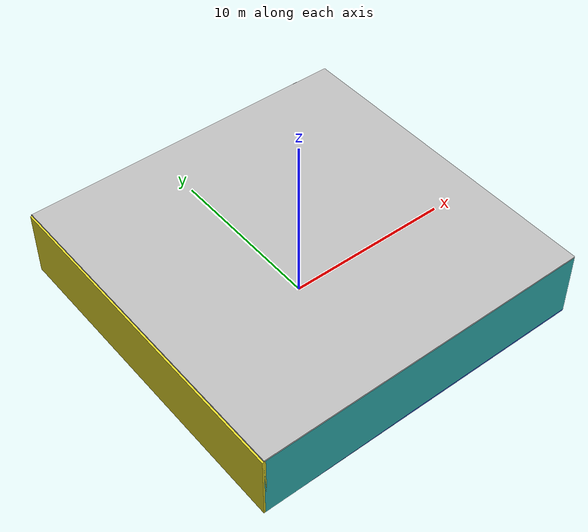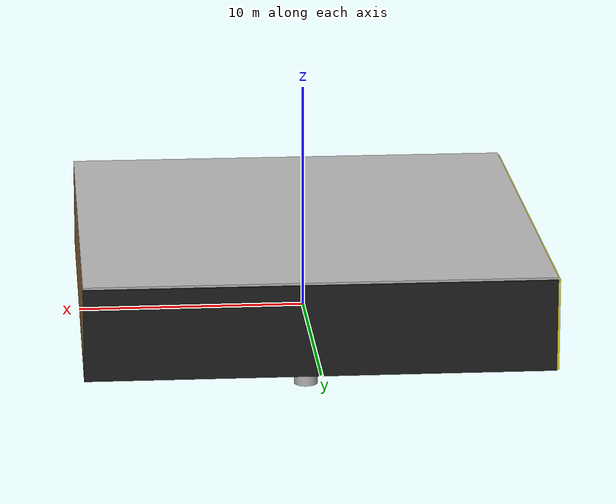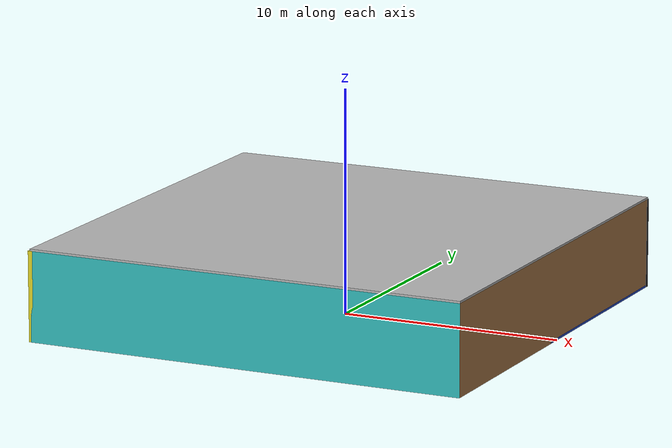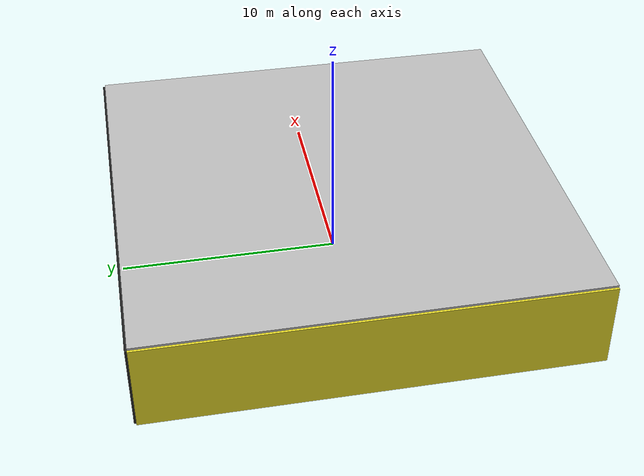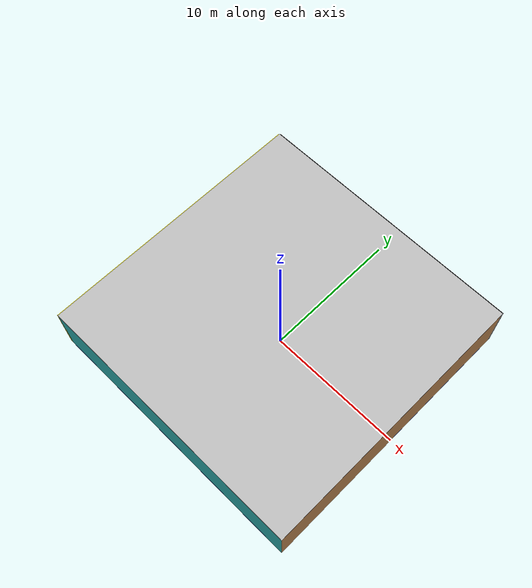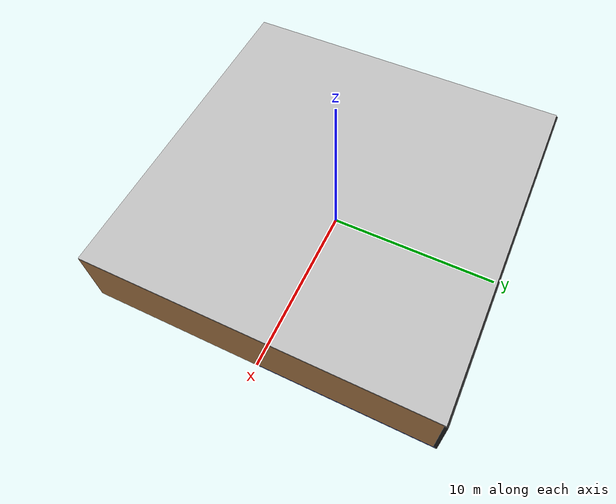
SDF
<sdf version="1.4">
 <world name="default">
  <physics type="ode">
   <max_step_size>0.001</max_step_size>
   <real_time_factor>1</real_time_factor>
   <real_time_update_rate>1000</real_time_update_rate>
   <gravity>0 0 -9.8</gravity>
  </physics>
  <scene><ambient>0.4 0.4 0.4 1</ambient><background>0.7 0.7 0.7 1</background><shadows>1</shadows></scene>
  <model name="Surrounding">
   <static>1</static>
   <link name="Ceiling">
    <collision name="Ceiling_Collision"><geometry><box><size>20 20 0.1</size></box></geometry></collision>
    <visual name="Ceiling_Visual">
     <geometry><box><size>20 20 0.1</size></box></geometry>
     <material>
      <script><uri>file://media/materials/scripts/gazebo.material</uri><name>Gazebo/CloudySky</name></script>
     </material>
    </visual>
    <pose>0 0 4.05 0 0 0</pose>
   </link>
   <link name="Wall_South">
    <collision name="Wall_South_Collision">
     <geometry><box><size>20 0 4</size></box></geometry>
     <pose>0 0 2 0 -0 0</pose>
    </collision>
    <visual name="Wall_South_Visual">
     <pose>0 0 2 0 -0 0</pose>
     <geometry><box><size>20 0 4</size></box></geometry>
     <material>
      <script><uri>file://media/materials/scripts/gazebo.material</uri><name>Gazebo/Turquoise</name></script>
     </material>
    </visual>
    <velocity_decay><linear>0</linear><angular>0</angular></velocity_decay>
    <pose>0 -10 0 0 -0 0</pose>
   </link>
   <link name="Wall_East">
    <collision name="Wall_21_Collision">
     <geometry><box><size>20 0 4</size></box></geometry>
     <pose>0 0 2 0 -0 0</pose>
    </collision>
    <visual name="Wall_21_Visual">
     <pose>0 0 2 0 -0 0</pose>
     <geometry><box><size>20 0 4</size></box></geometry>
     <material>
      <script><uri>file://media/materials/scripts/gazebo.material</uri><name>Gazebo/WoodPallet</name></script>
     </material>
    </visual>
    <velocity_decay><linear>0</linear><angular>0</angular></velocity_decay>
    <pose>10 0 0 0 -0 1.5708</pose>
   </link>
   <link name="Wall_North">
    <collision name="Wall_22_Collision">
     <geometry><box><size>20 0.2 4</size></box></geometry>
     <pose>0 0 2 0 -0 0</pose>
    </collision>
    <visual name="Wall_22_Visual">
     <pose>0 0 2 0 -0 0</pose>
     <geometry><box><size>20 0.2 4</size></box></geometry>
     <material>
      <script><uri>file://media/materials/scripts/gazebo.material</uri><name>Gazebo/Black</name></script>
     </material>
    </visual>
    <velocity_decay><linear>0</linear><angular>0</angular></velocity_decay>
    <pose>0 10 0 0 -0 0</pose>
   </link>
   <link name="Wall_West">
    <collision name="Wall_23_Collision">
     <geometry><box><size>20 0.2 4</size></box></geometry>
     <pose>0 0 2 0 -0 0</pose>
    </collision>
    <visual name="Wall_23_Visual">
     <pose>0 0 2 0 -0 0</pose>
     <geometry><box><size>20 0.2 4</size></box></geometry>
     <material>
      <script><uri>file://media/materials/scripts/gazebo.material</uri><name>Gazebo/Yellow</name></script>
     </material>
    </visual>
    <velocity_decay><linear>0</linear><angular>0</angular></velocity_decay>
    <pose>-10 0 0 0 0 -1.5708</pose>
   </link>
   <link name="Ground_link">
    <collision name="collision">
     <pose>0 0 .05 0 -0 0</pose>
     <geometry><box><size>20 20 0.1</size></box></geometry>
    </collision>
    <visual name="visual">
     <pose>0 0 .05 0 -0 0</pose>
     <geometry><box><size>20 20 0.1</size></box></geometry>
     <material>
      <script><uri>file://media/materials/scripts/gazebo.material</uri><name>Gazebo/Blue</name></script>
     </material>
    </visual>
   </link>
   <static>1</static>
  </model>
  <spherical_coordinates>
   <surface_model>EARTH_WGS84</surface_model>
   <latitude_deg>0</latitude_deg>
   <longitude_deg>0</longitude_deg>
   <elevation>0</elevation>
   <heading_deg>0</heading_deg>
  </spherical_coordinates>
  <light name="lightball_0" type="diffuse">
   <diffuse>0.8 0.8 0.8 1</diffuse>
   <specular>0.2 0.2 0.2 1</specular>
   <attenuation>
    <range>100</range>
    <constant>0.7</constant>
    <linear>0.01</linear>
    <quadratic>0.001</quadratic>
   </attenuation>
   <direction>-0.5 0.1 -0.9</direction>
   <pose>1.28891148883 -6.77637509461 2.68023379082 0 0 0</pose>
  </light>
  <light name="lightball_1" type="diffuse">
   <diffuse>0.8 0.8 0.8 1</diffuse>
   <specular>0.2 0.2 0.2 1</specular>
   <attenuation>
    <range>100</range>
    <constant>0.7</constant>
    <linear>0.01</linear>
    <quadratic>0.001</quadratic>
   </attenuation>
   <direction>-0.5 0.1 -0.9</direction>
   <pose>7.27363267567 -5.3203029003 2.66239905632 0 0 0</pose>
  </light>
  <light name="lightball_2" type="diffuse">
   <diffuse>0.8 0.8 0.8 1</diffuse>
   <specular>0.2 0.2 0.2 1</specular>
   <attenuation>
    <range>100</range>
    <constant>0.7</constant>
    <linear>0.01</linear>
    <quadratic>0.001</quadratic>
   </attenuation>
   <direction>-0.5 0.1 -0.9</direction>
   <pose>2.17900996468 -4.90706237101 2.74846625404 0 0 0</pose>
  </light>
  <light name="lightball_3" type="diffuse">
   <diffuse>0.8 0.8 0.8 1</diffuse>
   <specular>0.2 0.2 0.2 1</specular>
   <attenuation>
    <range>100</range>
    <constant>0.7</constant>
    <linear>0.01</linear>
    <quadratic>0.001</quadratic>
   </attenuation>
   <direction>-0.5 0.1 -0.9</direction>
   <pose>-8.1573891986 -9.29800693075 2.84106183208 0 0 0</pose>
  </light>
  <light name="lightball_4" type="diffuse">
   <diffuse>0.8 0.8 0.8 1</diffuse>
   <specular>0.2 0.2 0.2 1</specular>
   <attenuation>
    <range>100</range>
    <constant>0.7</constant>
    <linear>0.01</linear>
    <quadratic>0.001</quadratic>
   </attenuation>
   <direction>-0.5 0.1 -0.9</direction>
   <pose>-6.44748059905 -7.13507575957 2.92675997537 0 0 0</pose>
  </light>
  <light name="lightball_5" type="diffuse">
   <diffuse>0.8 0.8 0.8 1</diffuse>
   <specular>0.2 0.2 0.2 1</specular>
   <attenuation>
    <range>100</range>
    <constant>0.7</constant>
    <linear>0.01</linear>
    <quadratic>0.001</quadratic>
   </attenuation>
   <direction>-0.5 0.1 -0.9</direction>
   <pose>7.16536787011 -3.86950986908 3.36790980376 0 0 0</pose>
  </light>
  <light name="lightball_6" type="diffuse">
   <diffuse>0.8 0.8 0.8 1</diffuse>
   <specular>0.2 0.2 0.2 1</specular>
   <attenuation>
    <range>100</range>
    <constant>0.7</constant>
    <linear>0.01</linear>
    <quadratic>0.001</quadratic>
   </attenuation>
   <direction>-0.5 0.1 -0.9</direction>
   <pose>-7.33281432826 2.04191392959 2.33797965118 0 0 0</pose>
  </light>
  <light name="lightball_7" type="diffuse">
   <diffuse>0.8 0.8 0.8 1</diffuse>
   <specular>0.2 0.2 0.2 1</specular>
   <attenuation>
    <range>100</range>
    <constant>0.7</constant>
    <linear>0.01</linear>
    <quadratic>0.001</quadratic>
   </attenuation>
   <direction>-0.5 0.1 -0.9</direction>
   <pose>7.54372030234 5.34548910287 3.51047633672 0 0 0</pose>
  </light>
  <light name="lightball_8" type="diffuse">
   <diffuse>0.8 0.8 0.8 1</diffuse>
   <specular>0.2 0.2 0.2 1</specular>
   <attenuation>
    <range>100</range>
    <constant>0.7</constant>
    <linear>0.01</linear>
    <quadratic>0.001</quadratic>
   </attenuation>
   <direction>-0.5 0.1 -0.9</direction>
   <pose>-3.04619342997 -6.66966965344 1.11580014957 0 0 0</pose>
  </light>
  <light name="lightball_9" type="diffuse">
   <diffuse>0.8 0.8 0.8 1</diffuse>
   <specular>0.2 0.2 0.2 1</specular>
   <attenuation>
    <range>100</range>
    <constant>0.7</constant>
    <linear>0.01</linear>
    <quadratic>0.001</quadratic>
   </attenuation>
   <direction>-0.5 0.1 -0.9</direction>
   <pose>4.74660218314 4.70866230163 3.20709633297 0 0 0</pose>
  </light>
  <light name="lightball_10" type="diffuse">
   <diffuse>0.8 0.8 0.8 1</diffuse>
   <specular>0.2 0.2 0.2 1</specular>
   <attenuation>
    <range>100</range>
    <constant>0.7</constant>
    <linear>0.01</linear>
    <quadratic>0.001</quadratic>
   </attenuation>
   <direction>-0.5 0.1 -0.9</direction>
   <pose>4.23480220074 2.72964719702 2.0188535006 0 0 0</pose>
  </light>
  <include><uri>model://cabinet</uri><pose>-3.79066007686 -4.367439119 0 0 0 1.71786088377</pose></include>
  <include>
   <uri>model://construction_cone</uri>
   <pose>1.53428362034 -0.755592147394 0 0 0 2.82654280387</pose>
  </include>
  <include><uri>model://cabinet</uri><pose>1.99296258952 1.07290444929 0 0 0 2.16573188899</pose></include>
  <include>
   <uri>model://textured_shapes</uri>
   <pose>1.17915137168 8.01684421249 0 0 0 0.384937766766</pose>
  </include>
  <include><uri>model://cabinet</uri><pose>5.24996729974 -1.87163495524 0 0 0 2.48221165058</pose></include>
  <include><uri>model://cabinet</uri><pose>4.86422639076 6.77693926668 0 0 0 0.812647417425</pose></include>
  <include>
   <uri>model://robocup_3Dsim_goal</uri>
   <pose>8.04386085159 3.63732631013 0 0 0 1.48808514943</pose>
  </include>
 </world>
</sdf>

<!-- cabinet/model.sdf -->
<sdf version="1.5">
  <model name="cabinet">
    <static>true</static>
    <link name="cabinet_bottom_plate">
      <inertial>
        <pose>0 0 -1 0 0 0</pose>
        <inertia>
          <ixx>2.050000</ixx>
          <ixy>0</ixy>
          <ixz>0</ixz>
          <iyy>2.050000</iyy>
          <iyz>0</iyz>
          <izz>2.050000</izz>
        </inertia>
        <mass>25.000000</mass>
      </inertial>
      <collision name="cabinet_bottom_plate_geom">
        <pose>0 0 0.010000 0 0 0</pose>
        <geometry>
          <box>
            <size>0.450000 0.450000 0.020000</size>
          </box>
        </geometry>
      </collision>
      <visual name="cabinet_bottom_plate_geom_visual">
        <pose>0 0 0.010000 0 0 0</pose>
        <geometry>
          <box>
            <size>0.450000 0.450000 0.020000</size>
          </box>
        </geometry>
        <material>
          <script>
            <uri>model://media/materials/scripts/gazebo.material</uri>
            <name>Gazebo/Wood</name>
          </script>
        </material>
      </visual>
      <collision name="cabinet_bottom_plate_geom_cabinet_back_plate">
        <pose>0.235000 0 0.510000 0 0 0</pose>
        <geometry>
          <box>
            <size>0.020000 0.450000 1.020000</size>
          </box>
        </geometry>
      </collision>
      <visual name="cabinet_bottom_plate_geom_cabinet_back_plate_visual">
        <pose>0.235000 0 0.510000 0 0 0</pose>
        <geometry>
          <box>
            <size>0.020000 0.450000 1.020000</size>
          </box>
        </geometry>
        <material>
          <script>
            <uri>model://media/materials/scripts/gazebo.material</uri>
            <name>Gazebo/Wood</name>
          </script>
        </material>
      </visual>
      <collision name="cabinet_bottom_plate_geom_cabinet_left_plate">
        <pose>0 0.235000 0.510000 0 0 0</pose>
        <geometry>
          <box>
            <size>0.450000 0.020000 1.020000</size>
          </box>
        </geometry>
      </collision>
      <visual name="cabinet_bottom_plate_geom_cabinet_left_plate_visual">
        <pose>0 0.235000 0.510000 0 0 0</pose>
        <geometry>
          <box>
            <size>0.450000 0.020000 1.020000</size>
          </box>
        </geometry>
        <material>
          <script>
            <uri>model://media/materials/scripts/gazebo.material</uri>
            <name>Gazebo/Wood</name>
          </script>
        </material>
      </visual>
      <collision name="cabinet_bottom_plate_geom_cabinet_middle_plate">
        <pose>0 0 0.510000 0 0 0</pose>
        <geometry>
          <box>
            <size>0.450000 0.450000 0.020000</size>
          </box>
        </geometry>
      </collision>
      <visual name="cabinet_bottom_plate_geom_cabinet_middle_plate_visual">
        <pose>0 0 0.510000 0 0 0</pose>
        <geometry>
          <box>
            <size>0.450000 0.450000 0.020000</size>
          </box>
        </geometry>
        <material>
          <script>
            <uri>model://media/materials/scripts/gazebo.material</uri>
            <name>Gazebo/Wood</name>
          </script>
        </material>
      </visual>
      <collision name="cabinet_bottom_plate_geom_cabinet_right_plate">
        <pose>0 -0.235000 0.510000 0 0 0</pose>
        <geometry>
          <box>
            <size>0.450000 0.020000 1.020000</size>
          </box>
        </geometry>
      </collision>
      <visual name="cabinet_bottom_plate_geom_cabinet_right_plate_visual">
        <pose>0 -0.235000 0.510000 0 0 0</pose>
        <geometry>
          <box>
            <size>0.450000 0.020000 1.020000</size>
          </box>
        </geometry>
        <material>
          <script>
            <uri>model://media/materials/scripts/gazebo.material</uri>
            <name>Gazebo/Wood</name>
          </script>
        </material>
      </visual>
      <collision name="cabinet_bottom_plate_geom_cabinet_top_plate">
        <pose>0 0 1.010000 0 0 0</pose>
        <geometry>
          <box>
            <size>0.450000 0.450000 0.020000</size>
          </box>
        </geometry>
      </collision>
      <visual name="cabinet_bottom_plate_geom_cabinet_top_plate_visual">
        <pose>0 0 1.010000 0 0 0</pose>
        <geometry>
          <box>
            <size>0.450000 0.450000 0.020000</size>
          </box>
        </geometry>
        <material>
          <script>
            <uri>model://media/materials/scripts/gazebo.material</uri>
            <name>Gazebo/Wood</name>
          </script>
        </material>
      </visual>
    </link>
  </model>
</sdf>

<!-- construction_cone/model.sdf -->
<sdf version="1.5">
  <model name="Construction Cone">
    <link name="link">
      <collision name="collision">
        <geometry>
          <mesh>
            <scale>10 10 10</scale>
            <uri>file://isr-testbed/construction_cone/meshes/construction_cone.dae</uri>
          </mesh>
        </geometry>
      </collision>
      <visual name="visual">
        <geometry>
          <mesh>
            <scale>10 10 10</scale>
            <uri>file://isr-testbed/construction_cone/meshes/construction_cone.dae</uri>
          </mesh>
        </geometry>
      </visual>
    </link>
  </model>
</sdf>

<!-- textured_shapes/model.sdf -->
<sdf version="1.6">
  <model name="textured_shapes">
    <pose>0 0 0.5 0 0 0</pose>
    <link name="box">
      <pose>0 -1.5 0 0 0 0</pose>
      <collision name="collision">
        <geometry>
          <box>
            <size>1 1 1</size>
          </box>
        </geometry>
      </collision>
      <visual name="visual">
        <geometry>
          <box>
            <size>1 1 1</size>
          </box>
        </geometry>
        <material>
          <script>
            <uri>model://../model_source/models/textured_shapes/materials/scripts</uri>
            <uri>model://../model_source/models/textured_shapes/materials/textures</uri>
            <name>TexturedShape/Squares</name>
          </script>
        </material>
      </visual>
    </link>
    <link name="sphere">
      <collision name="collision">
        <geometry>
          <sphere>
            <radius>0.5</radius>
          </sphere>
        </geometry>
      </collision>
      <visual name="visual">
        <geometry>
          <sphere>
            <radius>0.5</radius>
          </sphere>
        </geometry>
        <material>
          <script>
            <uri>model://../model_source/models/textured_shapes/materials/scripts</uri>
            <uri>model://../model_source/models/textured_shapes/materials/textures</uri>
            <name>TexturedShape/Squares</name>
          </script>
        </material>
      </visual>
    </link>
    <link name="cylinder">
      <pose>0 1.5 0 0 0 0</pose>
      <collision name="collision">
        <geometry>
          <cylinder>
            <radius>0.5</radius>
            <length>1</length>
          </cylinder>
        </geometry>
      </collision>
      <visual name="visual">
        <geometry>
          <cylinder>
            <radius>0.5</radius>
            <length>1</length>
          </cylinder>
        </geometry>
        <material>
          <script>
            <uri>model://../model_source/models/textured_shapes/materials/scripts</uri>
            <uri>model://../model_source/models/textured_shapes/materials/textures</uri>
            <name>TexturedShape/Squares</name>
          </script>
        </material>
      </visual>
    </link>
  </model>
</sdf>

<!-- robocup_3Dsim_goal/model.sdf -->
<sdf version="1.5">
  <model name="robocup_3d_goal">
    <static>true</static>
    <link name="left_post">
      <pose>0 1.05 0.45 0 0 0</pose>
      <collision name="collision">
        <geometry>
          <cylinder>
            <radius>0.05</radius>
            <length>0.9</length>
          </cylinder>
        </geometry>
      </collision>
      <visual name="visual">
        <geometry>
          <cylinder>
            <radius>0.05</radius>
            <length>0.9</length>
          </cylinder>
        </geometry>
        <material>
          <script>
            <uri>file://media/materials/scripts/gazebo.material</uri>
            <name>Gazebo/ZincYellow</name>
          </script>
        </material>
      </visual>
    </link>
    <link name="left_support_horiz_lower">
      <pose>0.30 1.05 0.01 0 0 0</pose>
      <collision name="collision">
        <geometry>
          <box>
            <size>0.50 0.02 0.02</size>
          </box>
        </geometry>
      </collision>
      <visual name="visual">
        <geometry>
          <box>
            <size>0.50 0.02 0.02</size>
          </box>
        </geometry>
        <material>
          <script>
            <uri>file://media/materials/scripts/gazebo.material</uri>
            <name>Gazebo/White</name>
          </script>
        </material>
      </visual>
    </link>
    <link name="left_support_horiz_upper">
      <pose>0.30 1.05 0.79 0 0 0</pose>
      <collision name="collision">
        <geometry>
          <box>
            <size>0.50 0.02 0.02</size>
          </box>
        </geometry>
      </collision>
      <visual name="visual">
        <geometry>
          <box>
            <size>0.50 0.02 0.02</size>
          </box>
        </geometry>
        <material>
          <script>
            <uri>file://media/materials/scripts/gazebo.material</uri>
            <name>Gazebo/White</name>
          </script>
        </material>
      </visual>
    </link>
    <link name="left_support_vertical">
      <pose>0.56 1.05 0.4 0 1.5708 0</pose>
      <collision name="collision">
        <geometry>
          <box>
            <size>0.80 0.02 0.02</size>
          </box>
        </geometry>
      </collision>
      <visual name="visual">
        <geometry>
          <box>
            <size>0.80 0.02 0.02</size>
          </box>
        </geometry>
        <material>
          <script>
            <uri>file://media/materials/scripts/gazebo.material</uri>
            <name>Gazebo/White</name>
          </script>
        </material>
      </visual>
    </link>
    <link name="right_support_horiz_lower">
      <pose>0.30 -1.05 0.01 0 0 0</pose>
      <collision name="collision">
        <geometry>
          <box>
            <size>0.50 0.02 0.02</size>
          </box>
        </geometry>
      </collision>
      <visual name="visual">
        <geometry>
          <box>
            <size>0.50 0.02 0.02</size>
          </box>
        </geometry>
        <material>
          <script>
            <uri>file://media/materials/scripts/gazebo.material</uri>
            <name>Gazebo/White</name>
          </script>
        </material>
      </visual>
    </link>
    <link name="right_support_horiz_upper">
      <pose>0.30 -1.05 0.79 0 0 0</pose>
      <collision name="collision">
        <geometry>
          <box>
            <size>0.50 0.02 0.02</size>
          </box>
        </geometry>
      </collision>
      <visual name="visual">
        <geometry>
          <box>
            <size>0.50 0.02 0.02</size>
          </box>
        </geometry>
        <material>
          <script>
            <uri>file://media/materials/scripts/gazebo.material</uri>
            <name>Gazebo/White</name>
          </script>
        </material>
      </visual>
    </link>
    <link name="right_support_vertical">
      <pose>0.56 -1.05 0.4 0 1.5708 0</pose>
      <collision name="collision">
        <geometry>
          <box>
            <size>0.80 0.02 0.02</size>
          </box>
        </geometry>
      </collision>
      <visual name="visual">
        <geometry>
          <box>
            <size>0.80 0.02 0.02</size>
          </box>
        </geometry>
        <material>
          <script>
            <uri>file://media/materials/scripts/gazebo.material</uri>
            <name>Gazebo/White</name>
          </script>
        </material>
      </visual>
    </link>
    <link name="center_support_horiz_lower">
      <pose>0.56 0 0.01 0 1.5708 0</pose>
      <collision name="collision">
        <geometry>
          <box>
            <size>0.02 2.08 0.02</size>
          </box>
        </geometry>
      </collision>
      <visual name="visual">
        <geometry>
          <box>
            <size>0.02 2.08 0.02</size>
          </box>
        </geometry>
        <material>
          <script>
            <uri>file://media/materials/scripts/gazebo.material</uri>
            <name>Gazebo/White</name>
          </script>
        </material>
      </visual>
    </link>
    <link name="center_support_horiz_upper">
      <pose>0.56 0 0.79 0 1.5708 0</pose>
      <collision name="collision">
        <geometry>
          <box>
            <size>0.02 2.08 0.02</size>
          </box>
        </geometry>
      </collision>
      <visual name="visual">
        <geometry>
          <box>
            <size>0.02 2.08 0.02</size>
          </box>
        </geometry>
        <material>
          <script>
            <uri>file://media/materials/scripts/gazebo.material</uri>
            <name>Gazebo/White</name>
          </script>
        </material>
      </visual>
    </link>
    <link name="right_post">
      <pose>0 -1.05 0.45 0 0 0</pose>
      <collision name="collision">
        <geometry>
          <cylinder>
            <radius>0.05</radius>
            <length>0.9</length>
          </cylinder>
        </geometry>
      </collision>
      <visual name="visual">
        <geometry>
          <cylinder>
            <radius>0.05</radius>
            <length>0.9</length>
          </cylinder>
        </geometry>
        <material>
          <script>
            <uri>file://media/materials/scripts/gazebo.material</uri>
            <name>Gazebo/ZincYellow</name>
          </script>
        </material>
      </visual>
    </link>
    <link name="crossbar">
      <pose>0 0 0.85 1.57 1.57 0</pose>
      <collision name="collision">
        <geometry>
          <cylinder>
            <radius>0.05</radius>
            <length>2.0</length>
          </cylinder>
        </geometry>
      </collision>
      <visual name="visual">
        <geometry>
          <cylinder>
            <radius>0.05</radius>
            <length>2.0</length>
          </cylinder>
        </geometry>
        <material>
          <script>
            <uri>file://media/materials/scripts/gazebo.material</uri>
            <name>Gazebo/ZincYellow</name>
          </script>
        </material>
      </visual>
    </link>
    <link name="center_net">
      <pose>0.56 0 0.40 0 0 0</pose>
      <collision name="collision">
        <geometry>
          <box>
            <size>0.01 2.1 0.80</size>
          </box>
        </geometry>
      </collision>
      <visual name="visual">
        <geometry>
          <box>
            <size>0.01 2.1 0.80</size>
          </box>
        </geometry>
        <material>
          <script>
            <uri>model://../model_source/models/robocup09_spl_field/materials/scripts/</uri>
            <uri>model://../model_source/models/robocup09_spl_field/materials/textures/</uri>
            <name>RoboCup/Net</name>
          </script>
        </material>
      </visual>
    </link>
    <link name="left_net">
      <pose>0.30 1.05 0.40 0 0 0</pose>
      <collision name="collision">
        <geometry>
          <box>
            <size>0.50 0.01 0.76</size>
          </box>
        </geometry>
      </collision>
      <visual name="visual">
        <geometry>
          <box>
            <size>0.50 0.01 0.76</size>
          </box>
        </geometry>
        <material>
          <script>
            <uri>model://../model_source/models/robocup09_spl_field/materials/scripts/</uri>
            <uri>model://../model_source/models/robocup09_spl_field/materials/textures/</uri>
            <name>RoboCup/Net</name>
          </script>
        </material>
      </visual>
    </link>
    <link name="right_net">
      <pose>0.30 -1.05 0.40 0 0 0</pose>
      <collision name="collision">
        <geometry>
          <box>
            <size>0.50 0.01 0.76</size>
          </box>
        </geometry>
      </collision>
      <visual name="visual">
        <geometry>
          <box>
            <size>0.50 0.01 0.76</size>
          </box>
        </geometry>
        <material>
          <script>
            <uri>model://../model_source/models/robocup09_spl_field/materials/scripts/</uri>
            <uri>model://../model_source/models/robocup09_spl_field/materials/textures/</uri>
            <name>RoboCup/Net</name>
          </script>
        </material>
      </visual>
    </link>
  </model>
</sdf>
